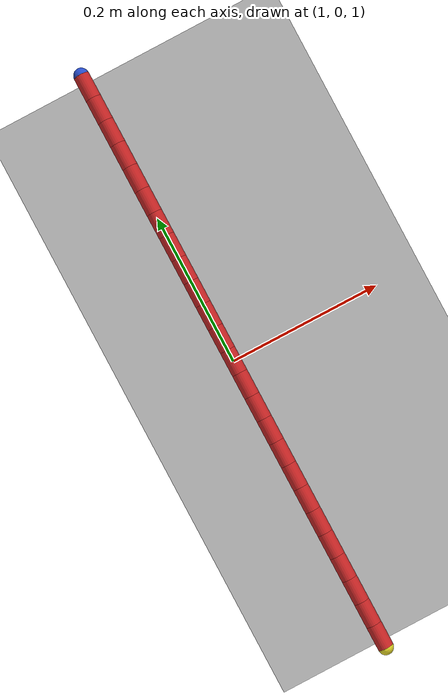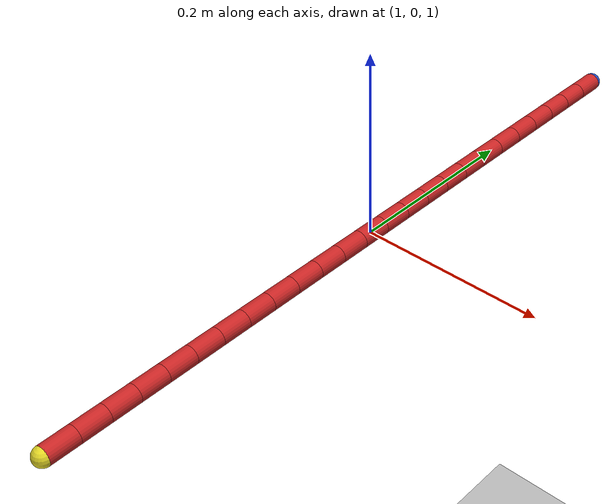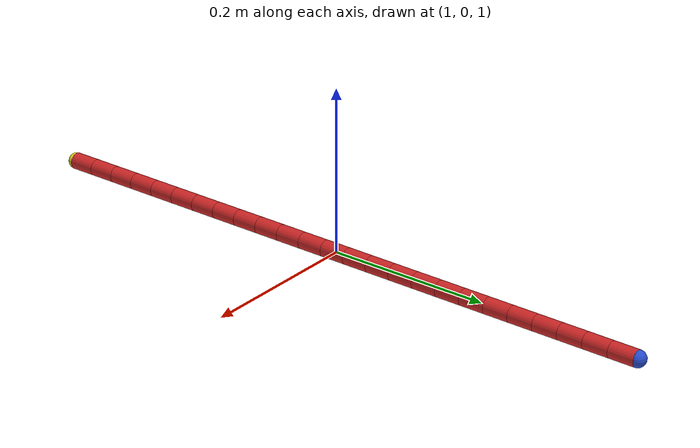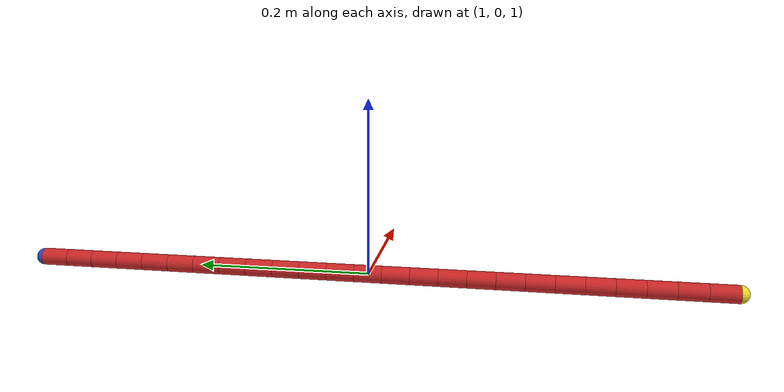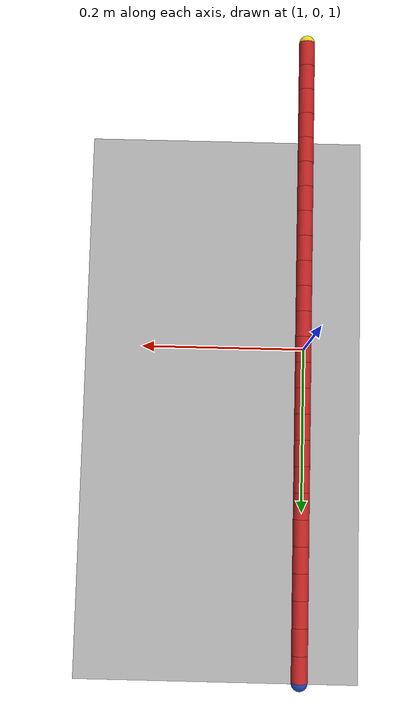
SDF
<sdf version="1.6">
 <world name="default">
  <scene>
   <grid>false</grid>
   <origin_visual>false</origin_visual>
   <sky><clouds><speed>12</speed></clouds></sky>
  </scene>
  <include><uri>model://sun</uri></include>
  <include><uri>model://my_ground_plane</uri></include>
  <plugin name="arm_gazebo_ros" filename="libarm_gazebo_ros_plugin.so"/>
  <plugin name="gazebo_ros_tf_plugin" filename="libgazebo_ros_tf_plugin.so"/>
  <plugin name="position_3d_plugin" filename="libposition_3d_plugin.so"/>
  <plugin name="collision_map_plugin" filename="libcollision_map_plugin.so"/>
  <model name="moveit_plugin_model">
   <plugin name="gazebo_ros_moveit_planning_scene" filename="libgazebo_ros_moveit_planning_scene.so">
    <frameId>robot_root</frameId>
   </plugin>
  </model>
  <physics name="ode" type="ode">
   <max_step_size>0.01</max_step_size>
   <real_time_factor>1</real_time_factor>
   <real_time_update_rate>100</real_time_update_rate>
   <ode>
    <solver>
     <island_threads>2</island_threads>
     <type>quick</type>
     <iters>100</iters>
     <sor>1.0</sor>
     <use_dynamic_moi_rescaling>false</use_dynamic_moi_rescaling>
    </solver>
   </ode>
  </physics>
  <include><pose>1.0 0.4 1.0 0 0 -1.5707</pose><uri>model://rope_3d</uri></include>
 </world>
</sdf>

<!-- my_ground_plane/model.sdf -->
<sdf version="1.5">
    <model name="my_ground_plane">
        <static>true</static>
            <allow_auto_disable>true</allow_auto_disable>
        <link name="link">
            <collision name="collision">
                <geometry>
                    <plane>
                        <normal>0 0 1</normal>
                        <size>4 4</size>
                    </plane>
                </geometry>
                <surface>
                    <friction>
                        <ode>
                            <mu>1000</mu>
                            <mu2>1000</mu2>
                        </ode>
                    </friction>
                    <contact>
                        <ode>
                            <kp>1e15</kp>
                            <kd>1e10</kd>
                        </ode>
                    </contact>
                </surface>
            </collision>
            <visual name="visual">
                <cast_shadows>false</cast_shadows>
                <geometry>
                    <plane>
                        <normal>0 0 1</normal>
                        <size>4 4</size>
                    </plane>
                </geometry>
                <material>
                    <script>
                        <uri>model://my_ground_plane/concrete.material</uri>
                        <name>ConcreteTexture</name>
                    </script>
                </material>
            </visual>
        </link>
    </model>
</sdf>
